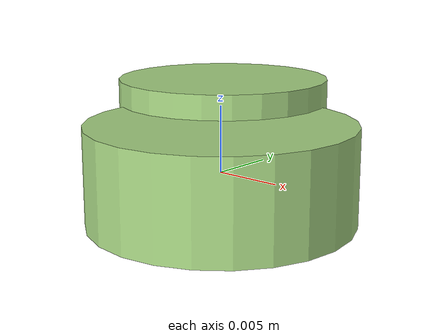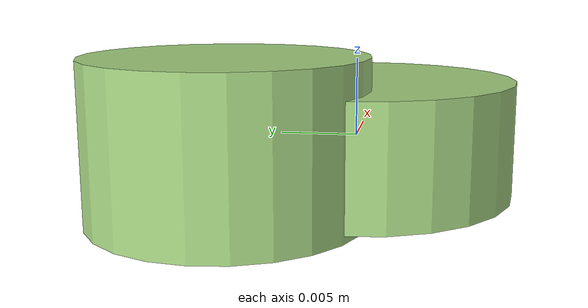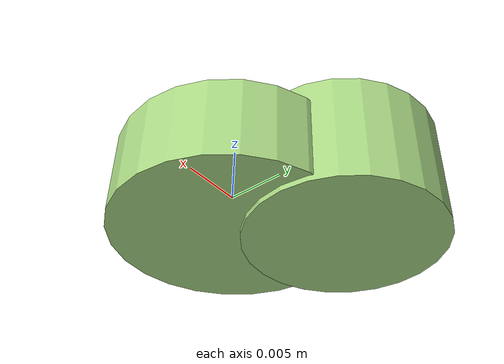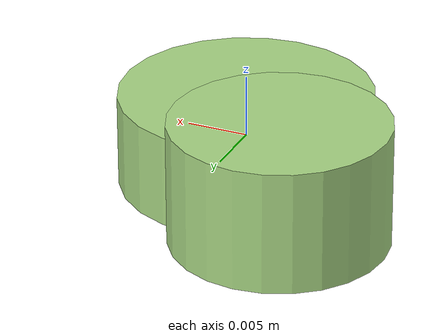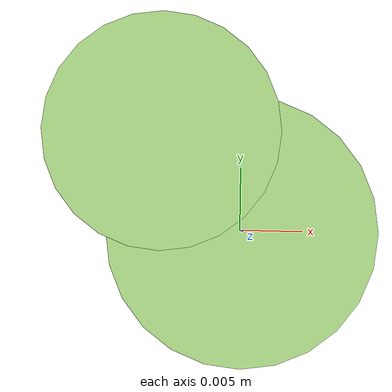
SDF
<?xml version="1.0" ?>
<!-- |    This document was autogenerated by xmacro from data/veggie_template/veggie_base.sdf.xacro  | -->
<!-- |    EDITING THIS FILE BY HAND IS NOT RECOMMENDED                                               | -->
<sdf version="1.8">
	<!-- Parameters -->
	<!-- Base -->
	<!-- Joint 0 -->
	<!-- Link 1 -->
	<!-- Joint 1 -->
	<!-- Link 2 -->
	<!-- Primitives -->
	<!-- All dimensions are half -->
	<!-- Object -->
	<model name="veggie">
		<!-- link0 -->
		<link name="link0">
			<inertial>
				<mass>0.0023916596920527614</mass>
				<inertia>
					<ixx>7.217496875460234e-08</ixx>
					<ixy>0</ixy>
					<ixz>0</ixz>
					<iyy>7.217496875460234e-08</iyy>
					<iyz>0</iyz>
					<izz>1.2224241623553982e-07</izz>
				</inertia>
			</inertial>
			<visual name="link0_visual">
				<pose>0 0 0 0 0 0</pose>
				<geometry>
					<cylinder>
						<radius>0.010110584624035135</radius>
						<length>0.007447250442213562</length>
					</cylinder>
				</geometry>
				<material>
					<ambient>0.659 0.839 0.514 1</ambient>
					<diffuse>0.659 0.839 0.514 1</diffuse>
					<specular>0 0 0 0</specular>
					<emissive>0 0 0 1</emissive>
				</material>
			</visual>
			<collision name="link0_collision">
				<pose>0 0 0 0 0 0 </pose>
				<geometry>
					<cylinder>
						<radius>0.010110584624035135</radius>
						<length>0.007447250442213562</length>
					</cylinder>
				</geometry>
			</collision>
		</link>
		<!-- link1 -->
		<joint name="joint0" type="fixed">
			<pose relative_to="link0">-0.00596613324269771 0.007195980721775319 0.0007332474823499668 0.0 0.0 0.0</pose>
			<parent>link0</parent>
			<child>link1</child>
		</joint>
		<link name="link1">
			<pose relative_to="joint0">0 0 0 0 0 0</pose>
			<inertial>
				<mass>0.002295330233268592</mass>
				<inertia>
					<ixx>6.112363864061906e-08</ixx>
					<ixy>0</ixy>
					<ixz>0</ixz>
					<iyy>6.112363864061906e-08</iyy>
					<iyz>0</iyz>
					<izz>8.514898640616362e-08</izz>
				</inertia>
			</inertial>
			<visual name="link1_visual">
				<pose>0 0 0 0 0 0</pose>
				<geometry>
					<cylinder>
						<radius>0.008613549435212708</radius>
						<length>0.009847590658198058</length>
					</cylinder>
				</geometry>
				<material>
					<ambient>0.659 0.839 0.514 1</ambient>
					<diffuse>0.659 0.839 0.514 1</diffuse>
					<specular>0 0 0 0</specular>
					<emissive>0 0 0 1</emissive>
				</material>
			</visual>
			<collision name="link1_collision">
				<pose>0 0 0 0 0 0 </pose>
				<geometry>
					<cylinder>
						<radius>0.008613549435212708</radius>
						<length>0.009847590658198058</length>
					</cylinder>
				</geometry>
			</collision>
		</link>
		<!-- link2 -->
	</model>
</sdf>
